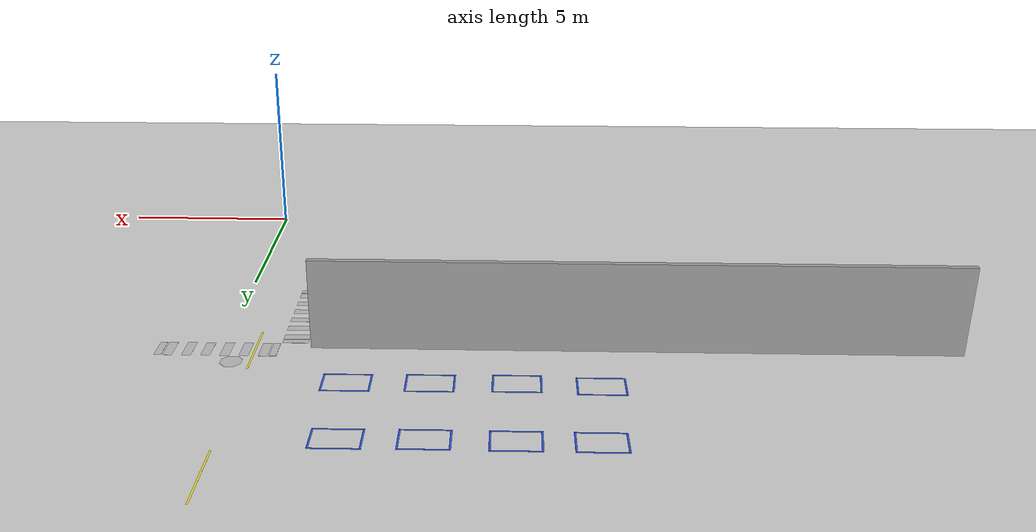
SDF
<sdf version="1.6">
 <world name="default">
  <model name="ground_plane">
   <static>1</static>
   <link name="link">
    <collision name="collision">
     <geometry><plane><normal>0 0 1</normal><size>100 100</size></plane></geometry>
     <surface><friction><ode><mu>100</mu><mu2>50</mu2></ode></friction></surface>
    </collision>
    <visual name="visual">
     <cast_shadows>0</cast_shadows>
     <geometry><plane><normal>0 0 1</normal><size>100 100</size></plane></geometry>
     <material>
      <script><uri>file://media/materials/scripts/gazebo.material</uri><name>Gazebo/Grey</name></script>
     </material>
    </visual>
   </link>
  </model>
  <model name="factoryWall_1">
   <pose>-10.8 8.85 0 0 -0 1.5708</pose>
   <link name="Wall_0">
    <collision name="Wall1_0_Collision">
     <geometry><box><size>17 0.15 2.5</size></box></geometry>
     <pose>0 0 1.25 0 -0 0</pose>
    </collision>
    <visual name="Wall1_0_Visual">
     <pose>0 0 1.25 0 -0 0</pose>
     <geometry><box><size>17 0.15 2.5</size></box></geometry>
     <material>
      <script><uri>file://media/materials/scripts/gazebo.material</uri><name>Gazebo/Grey</name></script>
      <ambient>1 1 1 1</ambient>
     </material>
     <meta><layer>0</layer></meta>
    </visual>
    <pose>0 0 0 0 -0 1.5708</pose>
   </link>
   <static>1</static>
  </model>
  <model name="line2m_1">
   <link name="link_0">
    <inertial>
     <mass>1</mass>
     <inertia>
      <ixx>0.166667</ixx>
      <ixy>0</ixy>
      <ixz>0</ixz>
      <iyy>0.166667</iyy>
      <iyz>0</iyz>
      <izz>0.166667</izz>
     </inertia>
    </inertial>
    <visual name="visual">
     <geometry><box><size>2 0.05 0.001</size></box></geometry>
     <material>
      <lighting>1</lighting>
      <script><uri>file://media/materials/scripts/gazebo.material</uri><name>Gazebo/Yellow</name></script>
     </material>
    </visual>
   </link>
   <static>1</static>
   <pose>-0.829144 14.7665 0 0 -0 1.5708</pose>
  </model>
  <model name="line2m_3">
   <link name="link_0">
    <inertial>
     <mass>1</mass>
     <inertia>
      <ixx>0.166667</ixx>
      <ixy>0</ixy>
      <ixz>0</ixz>
      <iyy>0.166667</iyy>
      <iyz>0</iyz>
      <izz>0.166667</izz>
     </inertia>
    </inertial>
    <visual name="visual">
     <geometry><box><size>2 0.05 0.001</size></box></geometry>
     <material>
      <lighting>1</lighting>
      <script><uri>file://media/materials/scripts/gazebo.material</uri><name>Gazebo/Yellow</name></script>
     </material>
    </visual>
   </link>
   <static>1</static>
   <pose>-0.854942 9.06995 0 0 -0 1.5708</pose>
  </model>
  <model name="crosswalk_4">
   <link name="link_0">
    <inertial>
     <mass>1</mass>
     <inertia>
      <ixx>0.166667</ixx>
      <ixy>0</ixy>
      <ixz>0</ixz>
      <iyy>0.166667</iyy>
      <iyz>0</iyz>
      <izz>0.166667</izz>
     </inertia>
    </inertial>
    <visual name="visual">
     <pose>0.25 0 0 0 -0 0</pose>
     <geometry><box><size>0.25 0.7 0.001</size></box></geometry>
     <material><lighting>1</lighting></material>
    </visual>
    <visual name="ModelPreview_0::link_0::visual_1">
     <pose>0.75 0 0 0 -0 0</pose>
     <geometry><box><size>0.25 0.7 0.001</size></box></geometry>
     <material><lighting>1</lighting></material>
    </visual>
    <visual name="ModelPreview_0::link_0::visual_2">
     <pose>1.25 0 0 0 -0 0</pose>
     <geometry><box><size>0.25 0.7 0.001</size></box></geometry>
     <material><lighting>1</lighting></material>
    </visual>
    <visual name="ModelPreview_0::link_0::visual_3">
     <pose>-0.25 0 0 0 -0 0</pose>
     <geometry><box><size>0.25 0.7 0.001</size></box></geometry>
     <material><lighting>1</lighting></material>
    </visual>
    <visual name="ModelPreview_0::link_0::visual_4">
     <pose>-0.75 0 0 0 -0 0</pose>
     <geometry><box><size>0.25 0.7 0.001</size></box></geometry>
     <material><lighting>1</lighting></material>
    </visual>
    <visual name="ModelPreview_0::link_0::visual_5">
     <pose>-1.25 0 0 0 -0 0</pose>
     <geometry><box><size>0.25 0.7 0.001</size></box></geometry>
     <material><lighting>1</lighting></material>
    </visual>
    <visual name="ModelPreview_0::link_0::visual_6">
     <pose>-1.6 0.35 0 -1.5708 -0 -1.5708</pose>
     <geometry>
      <mesh><uri>model://crosswalk/model/Warning+sign+confined+space/model.dae</uri><scale>2.35 2 0.9</scale></mesh>
     </geometry>
    </visual>
    <visual name="ModelPreview_0::link_0::visual_7">
     <pose>1.6 -0.35 0 -1.5708 0 1.5708</pose>
     <geometry>
      <mesh><uri>model://crosswalk/model/Warning+sign+confined+space/model.dae</uri><scale>2.35 2 0.9</scale></mesh>
     </geometry>
     <material><lighting>1</lighting></material>
    </visual>
   </link>
   <static>1</static>
   <pose>-1.83967 7.07472 0 0 -0 1.5708</pose>
  </model>
  <model name="crosswalk_6">
   <link name="link_0">
    <inertial>
     <mass>1</mass>
     <inertia>
      <ixx>0.166667</ixx>
      <ixy>0</ixy>
      <ixz>0</ixz>
      <iyy>0.166667</iyy>
      <iyz>0</iyz>
      <izz>0.166667</izz>
     </inertia>
    </inertial>
    <visual name="visual">
     <pose>0.25 0 0 0 -0 0</pose>
     <geometry><box><size>0.25 0.7 0.001</size></box></geometry>
     <material><lighting>1</lighting></material>
    </visual>
    <visual name="ModelPreview_0::link_0::visual_1">
     <pose>0.75 0 0 0 -0 0</pose>
     <geometry><box><size>0.25 0.7 0.001</size></box></geometry>
     <material><lighting>1</lighting></material>
    </visual>
    <visual name="ModelPreview_0::link_0::visual_2">
     <pose>1.25 0 0 0 -0 0</pose>
     <geometry><box><size>0.25 0.7 0.001</size></box></geometry>
     <material><lighting>1</lighting></material>
    </visual>
    <visual name="ModelPreview_0::link_0::visual_3">
     <pose>-0.25 0 0 0 -0 0</pose>
     <geometry><box><size>0.25 0.7 0.001</size></box></geometry>
     <material><lighting>1</lighting></material>
    </visual>
    <visual name="ModelPreview_0::link_0::visual_4">
     <pose>-0.75 0 0 0 -0 0</pose>
     <geometry><box><size>0.25 0.7 0.001</size></box></geometry>
     <material><lighting>1</lighting></material>
    </visual>
    <visual name="ModelPreview_0::link_0::visual_5">
     <pose>-1.25 0 0 0 -0 0</pose>
     <geometry><box><size>0.25 0.7 0.001</size></box></geometry>
     <material><lighting>1</lighting></material>
    </visual>
    <visual name="ModelPreview_0::link_0::visual_6">
     <pose>-1.6 0.35 0 -1.5708 -0 -1.5708</pose>
     <geometry>
      <mesh><uri>model://crosswalk/model/Warning+sign+confined+space/model.dae</uri><scale>2.35 2 0.9</scale></mesh>
     </geometry>
    </visual>
    <visual name="ModelPreview_0::link_0::visual_7">
     <pose>1.6 -0.35 0 -1.5708 0 1.5708</pose>
     <geometry>
      <mesh><uri>model://crosswalk/model/Warning+sign+confined+space/model.dae</uri><scale>2.35 2 0.9</scale></mesh>
     </geometry>
     <material><lighting>1</lighting></material>
    </visual>
   </link>
   <static>1</static>
   <pose>0.13411 9.05247 0 0 -0 0</pose>
  </model>
  <model name="stopSign_1">
   <link name="link_0">
    <inertial>
     <mass>1</mass>
     <inertia><ixx>0.145833</ixx><ixy>0</ixy><ixz>0</ixz><iyy>0.145833</iyy><iyz>0</iyz><izz>0.125</izz></inertia>
    </inertial>
    <visual name="visual">
     <geometry><mesh><uri>model://stopSign/model/model.dae</uri><scale>1 1 0.1</scale></mesh></geometry>
     <material><lighting>1</lighting></material>
    </visual>
   </link>
   <static>1</static>
   <pose>-2.80196 6.84142 0 0 0 -1.5708</pose>
  </model>
  <model name="stopSign_4">
   <link name="link_0">
    <inertial>
     <mass>1</mass>
     <inertia><ixx>0.145833</ixx><ixy>0</ixy><ixz>0</ixz><iyy>0.145833</iyy><iyz>0</iyz><izz>0.125</izz></inertia>
    </inertial>
    <visual name="visual">
     <geometry><mesh><uri>model://stopSign/model/model.dae</uri><scale>1 1 0.1</scale></mesh></geometry>
     <material><lighting>1</lighting></material>
    </visual>
   </link>
   <static>1</static>
   <pose>-0.083664 9.98217 0 0 0 -3.14159</pose>
  </model>
  <model name="120x90sign_sitesafety">
   <link name="link_0">
    <inertial>
     <mass>1</mass>
     <inertia>
      <ixx>0.166667</ixx>
      <ixy>0</ixy>
      <ixz>0</ixz>
      <iyy>0.166667</iyy>
      <iyz>0</iyz>
      <izz>0.166667</izz>
     </inertia>
    </inertial>
    <visual name="visual">
     <pose>-0.3 0 -0.45 0 -0 0</pose>
     <geometry>
      <mesh><uri>model://120x90sign_sitesafety/model/model.dae</uri><scale>2 1 4.4</scale></mesh>
     </geometry>
     <material><lighting>1</lighting></material>
    </visual>
    <collision name="collision">
     <geometry><box><size>0.6 0.005 0.9</size></box></geometry>
     <surface>
      <friction>
       <ode><mu>1</mu><mu2>1</mu2><fdir1>0 0 0</fdir1><slip1>0</slip1><slip2>0</slip2></ode>
       <torsional>
        <coefficient>1</coefficient>
        <patch_radius>0</patch_radius>
        <surface_radius>0</surface_radius>
        <use_patch_radius>1</use_patch_radius>
        <ode><slip>0</slip></ode>
       </torsional>
      </friction>
      <bounce><restitution_coefficient>0</restitution_coefficient><threshold>1e+06</threshold></bounce>
      <contact>
       <collide_without_contact>0</collide_without_contact>
       <collide_without_contact_bitmask>1</collide_without_contact_bitmask>
       <collide_bitmask>1</collide_bitmask>
       <ode>
        <soft_cfm>0</soft_cfm>
        <soft_erp>0.2</soft_erp>
        <kp>1e+13</kp>
        <kd>1</kd>
        <max_vel>0.01</max_vel>
        <min_depth>0</min_depth>
       </ode>
       <bullet>
        <split_impulse>1</split_impulse>
        <split_impulse_penetration_threshold>-0.01</split_impulse_penetration_threshold>
        <soft_cfm>0</soft_cfm>
        <soft_erp>0.2</soft_erp>
        <kp>1e+13</kp>
        <kd>1</kd>
       </bullet>
      </contact>
     </surface>
    </collision>
   </link>
   <static>1</static>
   <pose>-10.7962 8.77 1.25 0 -0 0</pose>
  </model>
  <model name="waitSpot_4">
   <link name="link_4">
    <inertial>
     <mass>1</mass>
     <inertia>
      <ixx>0.166667</ixx>
      <ixy>0</ixy>
      <ixz>0</ixz>
      <iyy>0.166667</iyy>
      <iyz>0</iyz>
      <izz>0.166667</izz>
     </inertia>
    </inertial>
    <visual name="ModelPreview_8::link_4::visual_3">
     <pose>-0.6 0 0 0 -0 0</pose>
     <geometry><box><size>0.05 0.8 0.0001</size></box></geometry>
     <material>
      <lighting>1</lighting>
      <script><uri>file://media/materials/scripts/gazebo.material</uri><name>Gazebo/Blue</name></script>
     </material>
    </visual>
    <visual name="ModelPreview_8::link_4::visual_1">
     <pose>0 -0.4 0 0 -0 0</pose>
     <geometry><box><size>1.25 0.05 0.0001</size></box></geometry>
     <material>
      <lighting>1</lighting>
      <script><uri>file://media/materials/scripts/gazebo.material</uri><name>Gazebo/Blue</name></script>
     </material>
    </visual>
    <visual name="ModelPreview_8::link_4::visual_2">
     <pose>0.6 0 0 0 -0 0</pose>
     <geometry><box><size>0.05 0.8 0.0001</size></box></geometry>
     <material>
      <lighting>1</lighting>
      <script><uri>file://media/materials/scripts/gazebo.material</uri><name>Gazebo/Blue</name></script>
     </material>
    </visual>
    <visual name="visual">
     <pose>0 0.4 0 0 -0 0</pose>
     <geometry><box><size>1.25 0.05 0.0001</size></box></geometry>
     <material>
      <lighting>1</lighting>
      <script><uri>file://media/materials/scripts/gazebo.material</uri><name>Gazebo/Blue</name></script>
     </material>
    </visual>
   </link>
   <static>1</static>
   <pose>-9.63708 13.2192 0 0 -0 0</pose>
  </model>
  <model name="waitSpot_5">
   <link name="link_4">
    <inertial>
     <mass>1</mass>
     <inertia>
      <ixx>0.166667</ixx>
      <ixy>0</ixy>
      <ixz>0</ixz>
      <iyy>0.166667</iyy>
      <iyz>0</iyz>
      <izz>0.166667</izz>
     </inertia>
    </inertial>
    <visual name="ModelPreview_8::link_4::visual_3">
     <pose>-0.6 0 0 0 -0 0</pose>
     <geometry><box><size>0.05 0.8 0.0001</size></box></geometry>
     <material>
      <lighting>1</lighting>
      <script><uri>file://media/materials/scripts/gazebo.material</uri><name>Gazebo/Blue</name></script>
     </material>
    </visual>
    <visual name="ModelPreview_8::link_4::visual_1">
     <pose>0 -0.4 0 0 -0 0</pose>
     <geometry><box><size>1.25 0.05 0.0001</size></box></geometry>
     <material>
      <lighting>1</lighting>
      <script><uri>file://media/materials/scripts/gazebo.material</uri><name>Gazebo/Blue</name></script>
     </material>
    </visual>
    <visual name="ModelPreview_8::link_4::visual_2">
     <pose>0.6 0 0 0 -0 0</pose>
     <geometry><box><size>0.05 0.8 0.0001</size></box></geometry>
     <material>
      <lighting>1</lighting>
      <script><uri>file://media/materials/scripts/gazebo.material</uri><name>Gazebo/Blue</name></script>
     </material>
    </visual>
    <visual name="visual">
     <pose>0 0.4 0 0 -0 0</pose>
     <geometry><box><size>1.25 0.05 0.0001</size></box></geometry>
     <material>
      <lighting>1</lighting>
      <script><uri>file://media/materials/scripts/gazebo.material</uri><name>Gazebo/Blue</name></script>
     </material>
    </visual>
   </link>
   <static>1</static>
   <pose>-7.68777 13.2092 0 0 -0 0</pose>
  </model>
  <model name="waitSpot_6">
   <link name="link_4">
    <inertial>
     <mass>1</mass>
     <inertia>
      <ixx>0.166667</ixx>
      <ixy>0</ixy>
      <ixz>0</ixz>
      <iyy>0.166667</iyy>
      <iyz>0</iyz>
      <izz>0.166667</izz>
     </inertia>
    </inertial>
    <visual name="ModelPreview_8::link_4::visual_3">
     <pose>-0.6 0 0 0 -0 0</pose>
     <geometry><box><size>0.05 0.8 0.0001</size></box></geometry>
     <material>
      <lighting>1</lighting>
      <script><uri>file://media/materials/scripts/gazebo.material</uri><name>Gazebo/Blue</name></script>
     </material>
    </visual>
    <visual name="ModelPreview_8::link_4::visual_1">
     <pose>0 -0.4 0 0 -0 0</pose>
     <geometry><box><size>1.25 0.05 0.0001</size></box></geometry>
     <material>
      <lighting>1</lighting>
      <script><uri>file://media/materials/scripts/gazebo.material</uri><name>Gazebo/Blue</name></script>
     </material>
    </visual>
    <visual name="ModelPreview_8::link_4::visual_2">
     <pose>0.6 0 0 0 -0 0</pose>
     <geometry><box><size>0.05 0.8 0.0001</size></box></geometry>
     <material>
      <lighting>1</lighting>
      <script><uri>file://media/materials/scripts/gazebo.material</uri><name>Gazebo/Blue</name></script>
     </material>
    </visual>
    <visual name="visual">
     <pose>0 0.4 0 0 -0 0</pose>
     <geometry><box><size>1.25 0.05 0.0001</size></box></geometry>
     <material>
      <lighting>1</lighting>
      <script><uri>file://media/materials/scripts/gazebo.material</uri><name>Gazebo/Blue</name></script>
     </material>
    </visual>
   </link>
   <static>1</static>
   <pose>-5.596 13.1985 0 0 -0 0</pose>
  </model>
  <model name="waitSpot_7">
   <link name="link_4">
    <inertial>
     <mass>1</mass>
     <inertia>
      <ixx>0.166667</ixx>
      <ixy>0</ixy>
      <ixz>0</ixz>
      <iyy>0.166667</iyy>
      <iyz>0</iyz>
      <izz>0.166667</izz>
     </inertia>
    </inertial>
    <visual name="ModelPreview_8::link_4::visual_3">
     <pose>-0.6 0 0 0 -0 0</pose>
     <geometry><box><size>0.05 0.8 0.0001</size></box></geometry>
     <material>
      <lighting>1</lighting>
      <script><uri>file://media/materials/scripts/gazebo.material</uri><name>Gazebo/Blue</name></script>
     </material>
    </visual>
    <visual name="ModelPreview_8::link_4::visual_1">
     <pose>0 -0.4 0 0 -0 0</pose>
     <geometry><box><size>1.25 0.05 0.0001</size></box></geometry>
     <material>
      <lighting>1</lighting>
      <script><uri>file://media/materials/scripts/gazebo.material</uri><name>Gazebo/Blue</name></script>
     </material>
    </visual>
    <visual name="ModelPreview_8::link_4::visual_2">
     <pose>0.6 0 0 0 -0 0</pose>
     <geometry><box><size>0.05 0.8 0.0001</size></box></geometry>
     <material>
      <lighting>1</lighting>
      <script><uri>file://media/materials/scripts/gazebo.material</uri><name>Gazebo/Blue</name></script>
     </material>
    </visual>
    <visual name="visual">
     <pose>0 0.4 0 0 -0 0</pose>
     <geometry><box><size>1.25 0.05 0.0001</size></box></geometry>
     <material>
      <lighting>1</lighting>
      <script><uri>file://media/materials/scripts/gazebo.material</uri><name>Gazebo/Blue</name></script>
     </material>
    </visual>
   </link>
   <static>1</static>
   <pose>-3.57226 13.2177 0 0 -0 0</pose>
  </model>
  <model name="waitSpot_8">
   <link name="link_4">
    <inertial>
     <mass>1</mass>
     <inertia>
      <ixx>0.166667</ixx>
      <ixy>0</ixy>
      <ixz>0</ixz>
      <iyy>0.166667</iyy>
      <iyz>0</iyz>
      <izz>0.166667</izz>
     </inertia>
    </inertial>
    <visual name="ModelPreview_8::link_4::visual_3">
     <pose>-0.6 0 0 0 -0 0</pose>
     <geometry><box><size>0.05 0.8 0.0001</size></box></geometry>
     <material>
      <lighting>1</lighting>
      <script><uri>file://media/materials/scripts/gazebo.material</uri><name>Gazebo/Blue</name></script>
     </material>
    </visual>
    <visual name="ModelPreview_8::link_4::visual_1">
     <pose>0 -0.4 0 0 -0 0</pose>
     <geometry><box><size>1.25 0.05 0.0001</size></box></geometry>
     <material>
      <lighting>1</lighting>
      <script><uri>file://media/materials/scripts/gazebo.material</uri><name>Gazebo/Blue</name></script>
     </material>
    </visual>
    <visual name="ModelPreview_8::link_4::visual_2">
     <pose>0.6 0 0 0 -0 0</pose>
     <geometry><box><size>0.05 0.8 0.0001</size></box></geometry>
     <material>
      <lighting>1</lighting>
      <script><uri>file://media/materials/scripts/gazebo.material</uri><name>Gazebo/Blue</name></script>
     </material>
    </visual>
    <visual name="visual">
     <pose>0 0.4 0 0 -0 0</pose>
     <geometry><box><size>1.25 0.05 0.0001</size></box></geometry>
     <material>
      <lighting>1</lighting>
      <script><uri>file://media/materials/scripts/gazebo.material</uri><name>Gazebo/Blue</name></script>
     </material>
    </visual>
   </link>
   <static>1</static>
   <pose>-3.46927 10.6945 0 0 -0 0</pose>
  </model>
  <model name="waitSpot_9">
   <link name="link_4">
    <inertial>
     <mass>1</mass>
     <inertia>
      <ixx>0.166667</ixx>
      <ixy>0</ixy>
      <ixz>0</ixz>
      <iyy>0.166667</iyy>
      <iyz>0</iyz>
      <izz>0.166667</izz>
     </inertia>
    </inertial>
    <visual name="ModelPreview_8::link_4::visual_3">
     <pose>-0.6 0 0 0 -0 0</pose>
     <geometry><box><size>0.05 0.8 0.0001</size></box></geometry>
     <material>
      <lighting>1</lighting>
      <script><uri>file://media/materials/scripts/gazebo.material</uri><name>Gazebo/Blue</name></script>
     </material>
    </visual>
    <visual name="ModelPreview_8::link_4::visual_1">
     <pose>0 -0.4 0 0 -0 0</pose>
     <geometry><box><size>1.25 0.05 0.0001</size></box></geometry>
     <material>
      <lighting>1</lighting>
      <script><uri>file://media/materials/scripts/gazebo.material</uri><name>Gazebo/Blue</name></script>
     </material>
    </visual>
    <visual name="ModelPreview_8::link_4::visual_2">
     <pose>0.6 0 0 0 -0 0</pose>
     <geometry><box><size>0.05 0.8 0.0001</size></box></geometry>
     <material>
      <lighting>1</lighting>
      <script><uri>file://media/materials/scripts/gazebo.material</uri><name>Gazebo/Blue</name></script>
     </material>
    </visual>
    <visual name="visual">
     <pose>0 0.4 0 0 -0 0</pose>
     <geometry><box><size>1.25 0.05 0.0001</size></box></geometry>
     <material>
      <lighting>1</lighting>
      <script><uri>file://media/materials/scripts/gazebo.material</uri><name>Gazebo/Blue</name></script>
     </material>
    </visual>
   </link>
   <static>1</static>
   <pose>-5.5529 10.6733 0 0 -0 0</pose>
  </model>
  <model name="waitSpot_10">
   <link name="link_4">
    <inertial>
     <mass>1</mass>
     <inertia>
      <ixx>0.166667</ixx>
      <ixy>0</ixy>
      <ixz>0</ixz>
      <iyy>0.166667</iyy>
      <iyz>0</iyz>
      <izz>0.166667</izz>
     </inertia>
    </inertial>
    <visual name="ModelPreview_8::link_4::visual_3">
     <pose>-0.6 0 0 0 -0 0</pose>
     <geometry><box><size>0.05 0.8 0.0001</size></box></geometry>
     <material>
      <lighting>1</lighting>
      <script><uri>file://media/materials/scripts/gazebo.material</uri><name>Gazebo/Blue</name></script>
     </material>
    </visual>
    <visual name="ModelPreview_8::link_4::visual_1">
     <pose>0 -0.4 0 0 -0 0</pose>
     <geometry><box><size>1.25 0.05 0.0001</size></box></geometry>
     <material>
      <lighting>1</lighting>
      <script><uri>file://media/materials/scripts/gazebo.material</uri><name>Gazebo/Blue</name></script>
     </material>
    </visual>
    <visual name="ModelPreview_8::link_4::visual_2">
     <pose>0.6 0 0 0 -0 0</pose>
     <geometry><box><size>0.05 0.8 0.0001</size></box></geometry>
     <material>
      <lighting>1</lighting>
      <script><uri>file://media/materials/scripts/gazebo.material</uri><name>Gazebo/Blue</name></script>
     </material>
    </visual>
    <visual name="visual">
     <pose>0 0.4 0 0 -0 0</pose>
     <geometry><box><size>1.25 0.05 0.0001</size></box></geometry>
     <material>
      <lighting>1</lighting>
      <script><uri>file://media/materials/scripts/gazebo.material</uri><name>Gazebo/Blue</name></script>
     </material>
    </visual>
   </link>
   <static>1</static>
   <pose>-7.70934 10.6445 0 0 -0 0</pose>
  </model>
  <model name="waitSpot_11">
   <link name="link_4">
    <inertial>
     <mass>1</mass>
     <inertia>
      <ixx>0.166667</ixx>
      <ixy>0</ixy>
      <ixz>0</ixz>
      <iyy>0.166667</iyy>
      <iyz>0</iyz>
      <izz>0.166667</izz>
     </inertia>
    </inertial>
    <visual name="ModelPreview_8::link_4::visual_3">
     <pose>-0.6 0 0 0 -0 0</pose>
     <geometry><box><size>0.05 0.8 0.0001</size></box></geometry>
     <material>
      <lighting>1</lighting>
      <script><uri>file://media/materials/scripts/gazebo.material</uri><name>Gazebo/Blue</name></script>
     </material>
    </visual>
    <visual name="ModelPreview_8::link_4::visual_1">
     <pose>0 -0.4 0 0 -0 0</pose>
     <geometry><box><size>1.25 0.05 0.0001</size></box></geometry>
     <material>
      <lighting>1</lighting>
      <script><uri>file://media/materials/scripts/gazebo.material</uri><name>Gazebo/Blue</name></script>
     </material>
    </visual>
    <visual name="ModelPreview_8::link_4::visual_2">
     <pose>0.6 0 0 0 -0 0</pose>
     <geometry><box><size>0.05 0.8 0.0001</size></box></geometry>
     <material>
      <lighting>1</lighting>
      <script><uri>file://media/materials/scripts/gazebo.material</uri><name>Gazebo/Blue</name></script>
     </material>
    </visual>
    <visual name="visual">
     <pose>0 0.4 0 0 -0 0</pose>
     <geometry><box><size>1.25 0.05 0.0001</size></box></geometry>
     <material>
      <lighting>1</lighting>
      <script><uri>file://media/materials/scripts/gazebo.material</uri><name>Gazebo/Blue</name></script>
     </material>
    </visual>
   </link>
   <static>1</static>
   <pose>-9.80008 10.7247 0 0 -0 0</pose>
  </model>
 </world>
</sdf>
